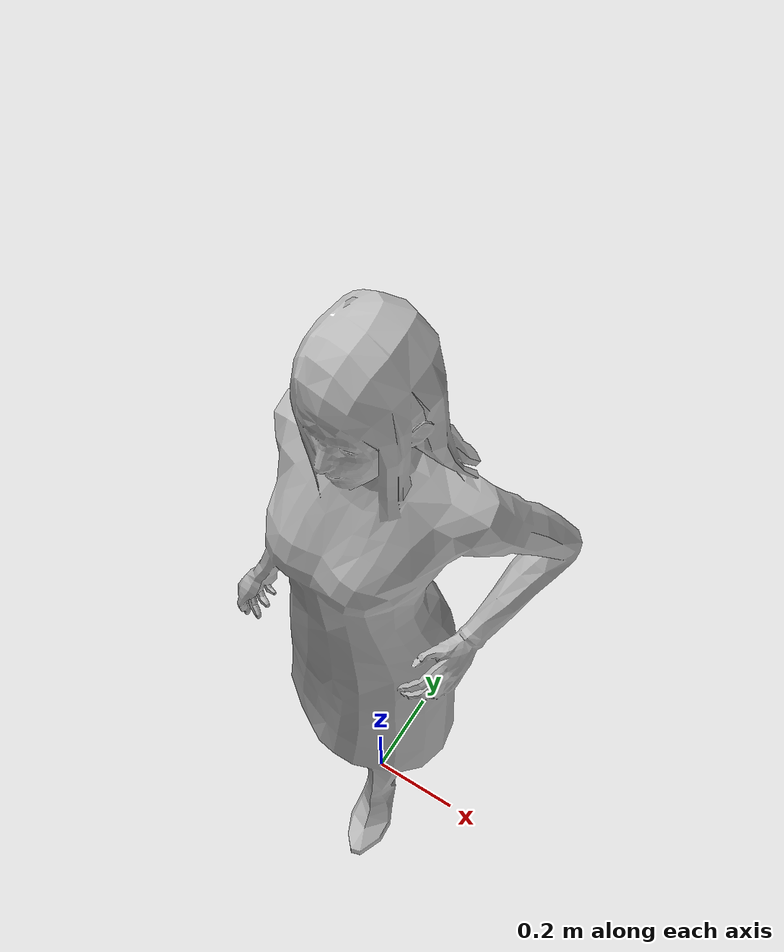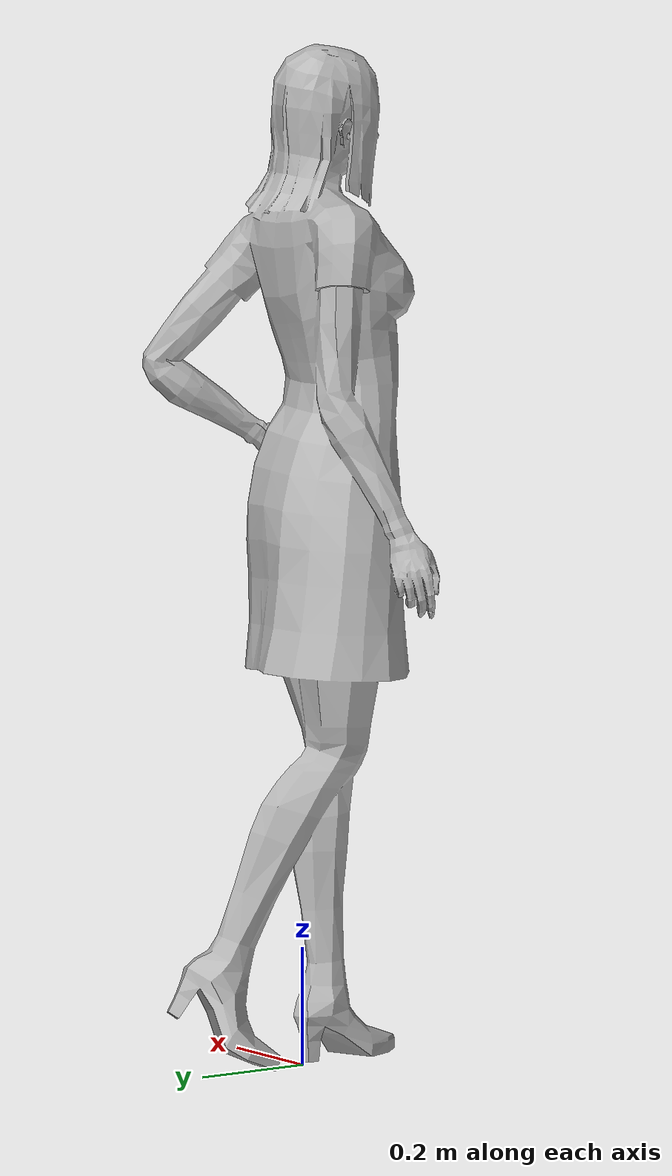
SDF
<?xml version="1.0" ?>

<sdf version="1.4">

 <model name="citizen_extras_female_02">

    <link name="link">

     <inertial>

       <mass>20</mass>

       <inertia>

         <ixx>0.0</ixx>

         <ixy>0.0</ixy>

         <ixz>0.0</ixz>

         <iyy>0.0</iyy>

         <iyz>0.0</iyz>

         <izz>0.0</izz>

       </inertia>

     </inertial>

     <collision name="collision">

       <pose>0 0 0 0 0 0</pose>

       <geometry>

         <mesh>

           <uri>model://citizen_extras_female_02/meshes/mesh.dae</uri>

         </mesh>

       </geometry>

     </collision>

     <visual name="visual">

       <pose>0 0 0 0 0 0</pose>

       <geometry>

         <mesh>

           <uri>model://citizen_extras_female_02/meshes/mesh.dae</uri>

         </mesh>

       </geometry>

     </visual>

    </link>

 </model>
</sdf>
